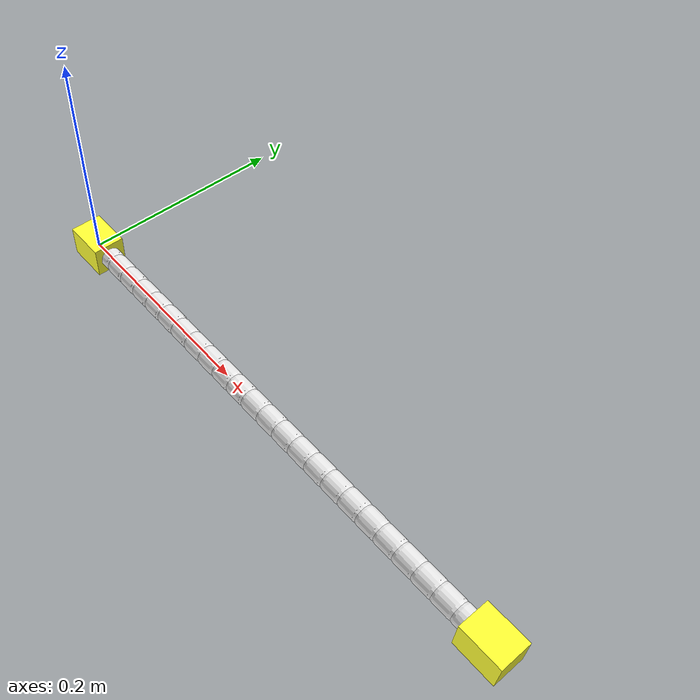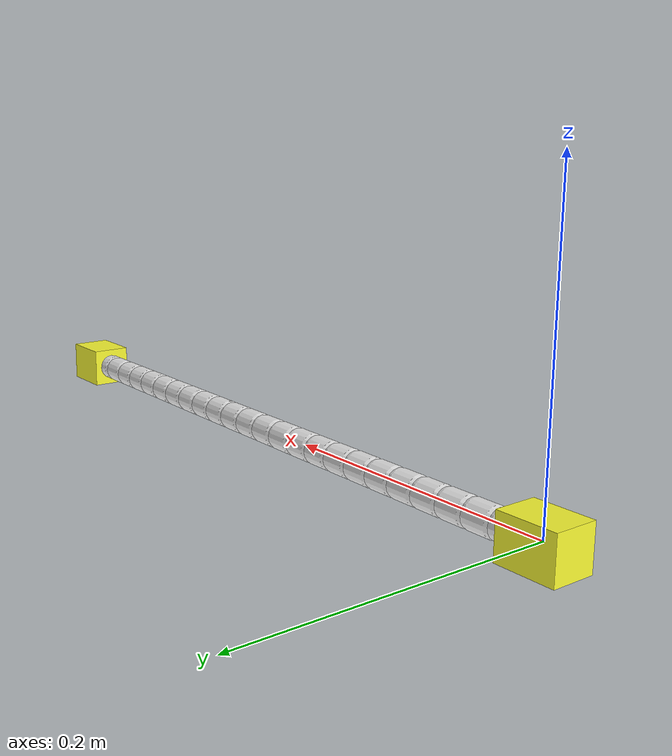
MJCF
<mujoco model="cable_rmb">
  <asset>
    <material name="cable_mat" rgba="0.92 0.92 0.92 1" specular="0.2" shininess="0.3"/>
    <material name="cable_box_mat" rgba="1 1 0.2 1" specular="0.2" shininess="0.3"/>
  </asset>
  <default>
    <geom friction="3 0.2 0.01" condim="4" solref="0.01 0.5" solimp="0.9 0.95 0.001" density="1200"/>
  </default>

  <worldbody>
    <body>
      <body name="object">
        <body name="cable_B0">
          <geom name="cable_endpoint_start" size="0.02 0.015 0.015" type="box" material="cable_box_mat"/>
          <geom name="cable_G0" size="0.01 0.0075" quat="0.707107 0 0.707107 0" type="capsule" material="cable_mat"/>
          <body name="cable_B1" pos="0.02 0 0">
            <joint name="cable_J0_1" pos="-0.01 0 0" axis="0 1 0" group="3" damping="0.005"/>
            <joint name="cable_J1_1" pos="-0.01 0 0" axis="0 0 1" group="3" damping="0.005"/>
            <geom name="cable_G1" size="0.01 0.0075" quat="0.707107 0 0.707107 0" type="capsule" material="cable_mat"/>
            <body name="cable_B2" pos="0.02 0 0">
              <joint name="cable_J0_2" pos="-0.01 0 0" axis="0 1 0" group="3" damping="0.005"/>
              <joint name="cable_J1_2" pos="-0.01 0 0" axis="0 0 1" group="3" damping="0.005"/>
              <geom name="cable_G2" size="0.01 0.0075" quat="0.707107 0 0.707107 0" type="capsule" material="cable_mat"/>
              <body name="cable_B3" pos="0.02 0 0">
                <joint name="cable_J0_3" pos="-0.01 0 0" axis="0 1 0" group="3" damping="0.005"/>
                <joint name="cable_J1_3" pos="-0.01 0 0" axis="0 0 1" group="3" damping="0.005"/>
                <geom name="cable_G3" size="0.01 0.0075" quat="0.707107 0 0.707107 0" type="capsule" material="cable_mat"/>
                <body name="cable_B4" pos="0.02 0 0">
                  <joint name="cable_J0_4" pos="-0.01 0 0" axis="0 1 0" group="3" damping="0.005"/>
                  <joint name="cable_J1_4" pos="-0.01 0 0" axis="0 0 1" group="3" damping="0.005"/>
                  <geom name="cable_G4" size="0.01 0.0075" quat="0.707107 0 0.707107 0" type="capsule" material="cable_mat"/>
                  <body name="cable_B5" pos="0.02 0 0">
                    <joint name="cable_J0_5" pos="-0.01 0 0" axis="0 1 0" group="3" damping="0.005"/>
                    <joint name="cable_J1_5" pos="-0.01 0 0" axis="0 0 1" group="3" damping="0.005"/>
                    <geom name="cable_G5" size="0.01 0.0075" quat="0.707107 0 0.707107 0" type="capsule" material="cable_mat"/>
                    <body name="cable_B6" pos="0.02 0 0">
                      <joint name="cable_J0_6" pos="-0.01 0 0" axis="0 1 0" group="3" damping="0.005"/>
                      <joint name="cable_J1_6" pos="-0.01 0 0" axis="0 0 1" group="3" damping="0.005"/>
                      <geom name="cable_G6" size="0.01 0.0075" quat="0.707107 0 0.707107 0" type="capsule" material="cable_mat"/>
                      <body name="cable_B7" pos="0.02 0 0">
                        <joint name="cable_J0_7" pos="-0.01 0 0" axis="0 1 0" group="3" damping="0.005"/>
                        <joint name="cable_J1_7" pos="-0.01 0 0" axis="0 0 1" group="3" damping="0.005"/>
                        <geom name="cable_G7" size="0.01 0.0075" quat="0.707107 0 0.707107 0" type="capsule" material="cable_mat"/>
                        <body name="cable_B8" pos="0.02 0 0">
                          <joint name="cable_J0_8" pos="-0.01 0 0" axis="0 1 0" group="3" damping="0.005"/>
                          <joint name="cable_J1_8" pos="-0.01 0 0" axis="0 0 1" group="3" damping="0.005"/>
                          <geom name="cable_G8" size="0.01 0.0075" quat="0.707107 0 0.707107 0" type="capsule" material="cable_mat"/>
                          <body name="cable_B9" pos="0.02 0 0">
                            <joint name="cable_J0_9" pos="-0.01 0 0" axis="0 1 0" group="3" damping="0.005"/>
                            <joint name="cable_J1_9" pos="-0.01 0 0" axis="0 0 1" group="3" damping="0.005"/>
                            <geom name="cable_G9" size="0.01 0.0075" quat="0.707107 0 0.707107 0" type="capsule" material="cable_mat"/>
                            <body name="cable_B10" pos="0.02 0 0">
                              <joint name="cable_J0_10" pos="-0.01 0 0" axis="0 1 0" group="3" damping="0.005"/>
                              <joint name="cable_J1_10" pos="-0.01 0 0" axis="0 0 1" group="3" damping="0.005"/>
                              <geom name="cable_G10" size="0.01 0.0075" quat="0.707107 0 0.707107 0" type="capsule" material="cable_mat"/>
                              <body name="cable_B11" pos="0.02 0 0">
                                <joint name="cable_J0_11" pos="-0.01 0 0" axis="0 1 0" group="3" damping="0.005"/>
                                <joint name="cable_J1_11" pos="-0.01 0 0" axis="0 0 1" group="3" damping="0.005"/>
                                <geom name="cable_G11" size="0.01 0.0075" quat="0.707107 0 0.707107 0" type="capsule" material="cable_mat"/>
                                <body name="cable_B12" pos="0.02 0 0">
                                  <joint name="cable_J0_12" pos="-0.01 0 0" axis="0 1 0" group="3" damping="0.005"/>
                                  <joint name="cable_J1_12" pos="-0.01 0 0" axis="0 0 1" group="3" damping="0.005"/>
                                  <geom name="cable_G12" size="0.01 0.0075" quat="0.707107 0 0.707107 0" type="capsule" material="cable_mat"/>
                                  <body name="cable_B13" pos="0.02 0 0">
                                    <joint name="cable_J0_13" pos="-0.01 0 0" axis="0 1 0" group="3" damping="0.005"/>
                                    <joint name="cable_J1_13" pos="-0.01 0 0" axis="0 0 1" group="3" damping="0.005"/>
                                    <geom name="cable_G13" size="0.01 0.0075" quat="0.707107 0 0.707107 0" type="capsule" material="cable_mat"/>
                                    <body name="cable_B14" pos="0.02 0 0">
                                      <joint name="cable_J0_14" pos="-0.01 0 0" axis="0 1 0" group="3" damping="0.005"/>
                                      <joint name="cable_J1_14" pos="-0.01 0 0" axis="0 0 1" group="3" damping="0.005"/>
                                      <geom name="cable_G14" size="0.01 0.0075" quat="0.707107 0 0.707107 0" type="capsule" material="cable_mat"/>
                                      <body name="cable_B15" pos="0.02 0 0">
                                        <joint name="cable_J0_15" pos="-0.01 0 0" axis="0 1 0" group="3" damping="0.005"/>
                                        <joint name="cable_J1_15" pos="-0.01 0 0" axis="0 0 1" group="3" damping="0.005"/>
                                        <geom name="cable_G15" size="0.01 0.0075" quat="0.707107 0 0.707107 0" type="capsule" material="cable_mat"/>
                                        <body name="cable_B16" pos="0.02 0 0">
                                          <joint name="cable_J0_16" pos="-0.01 0 0" axis="0 1 0" group="3" damping="0.005"/>
                                          <joint name="cable_J1_16" pos="-0.01 0 0" axis="0 0 1" group="3" damping="0.005"/>
                                          <geom name="cable_G16" size="0.01 0.0075" quat="0.707107 0 0.707107 0" type="capsule" material="cable_mat"/>
                                          <body name="cable_B17" pos="0.02 0 0">
                                            <joint name="cable_J0_17" pos="-0.01 0 0" axis="0 1 0" group="3" damping="0.005"/>
                                            <joint name="cable_J1_17" pos="-0.01 0 0" axis="0 0 1" group="3" damping="0.005"/>
                                            <geom name="cable_G17" size="0.01 0.0075" quat="0.707107 0 0.707107 0" type="capsule" material="cable_mat"/>
                                            <body name="cable_B18" pos="0.02 0 0">
                                              <joint name="cable_J0_18" pos="-0.01 0 0" axis="0 1 0" group="3" damping="0.005"/>
                                              <joint name="cable_J1_18" pos="-0.01 0 0" axis="0 0 1" group="3" damping="0.005"/>
                                              <geom name="cable_G18" size="0.01 0.0075" quat="0.707107 0 0.707107 0" type="capsule" material="cable_mat"/>
                                              <body name="cable_B19" pos="0.02 0 0">
                                                <joint name="cable_J0_19" pos="-0.01 0 0" axis="0 1 0" group="3" damping="0.005"/>
                                                <joint name="cable_J1_19" pos="-0.01 0 0" axis="0 0 1" group="3" damping="0.005"/>
                                                <geom name="cable_G19" size="0.01 0.0075" quat="0.707107 0 0.707107 0" type="capsule" material="cable_mat"/>
                                                <body name="cable_B20" pos="0.02 0 0">
                                                  <joint name="cable_J0_20" pos="-0.01 0 0" axis="0 1 0" group="3" damping="0.005"/>
                                                  <joint name="cable_J1_20" pos="-0.01 0 0" axis="0 0 1" group="3" damping="0.005"/>
                                                  <geom name="cable_G20" size="0.01 0.0075" quat="0.707107 0 0.707107 0" type="capsule" material="cable_mat"/>
                                                  <body name="cable_B21" pos="0.02 0 0">
                                                    <joint name="cable_J0_21" pos="-0.01 0 0" axis="0 1 0" group="3" damping="0.005"/>
                                                    <joint name="cable_J1_21" pos="-0.01 0 0" axis="0 0 1" group="3" damping="0.005"/>
                                                    <geom name="cable_G21" size="0.01 0.0075" quat="0.707107 0 0.707107 0" type="capsule" material="cable_mat"/>
                                                    <body name="cable_B22" pos="0.02 0 0">
                                                      <joint name="cable_J0_22" pos="-0.01 0 0" axis="0 1 0" group="3" damping="0.005"/>
                                                      <joint name="cable_J1_22" pos="-0.01 0 0" axis="0 0 1" group="3" damping="0.005"/>
                                                      <geom name="cable_G22" size="0.01 0.0075" quat="0.707107 0 0.707107 0" type="capsule" material="cable_mat"/>
                                                      <body name="cable_B23" pos="0.02 0 0">
                                                        <joint name="cable_J0_23" pos="-0.01 0 0" axis="0 1 0" group="3" damping="0.005"/>
                                                        <joint name="cable_J1_23" pos="-0.01 0 0" axis="0 0 1" group="3" damping="0.005"/>
                                                        <geom name="cable_G23" size="0.01 0.0075" quat="0.707107 0 0.707107 0" type="capsule" material="cable_mat"/>
                                                        <body name="cable_B24" pos="0.02 0 0">
                                                          <joint name="cable_J0_24" pos="-0.01 0 0" axis="0 1 0" group="3" damping="0.005"/>
                                                          <joint name="cable_J1_24" pos="-0.01 0 0" axis="0 0 1" group="3" damping="0.005"/>
                                                          <geom name="cable_G24" size="0.01 0.0075" quat="0.707107 0 0.707107 0" type="capsule" material="cable_mat"/>
                                                          <body name="cable_end" pos="0.02 0 0">
                                                            <geom name="cable_endpoint_end" type="box" size="0.02 0.015 0.015" pos="0.0 0.0 0.0" material="cable_box_mat"/>
                                                          </body>
                                                        </body>
                                                      </body>
                                                    </body>
                                                  </body>
                                                </body>
                                              </body>
                                            </body>
                                          </body>
                                        </body>
                                      </body>
                                    </body>
                                  </body>
                                </body>
                              </body>
                            </body>
                          </body>
                        </body>
                      </body>
                    </body>
                  </body>
                </body>
              </body>
            </body>
          </body>
        </body>
      </body>
      <site name="bottom_site" pos="0 0 -0.015" size="0.005" rgba="0 0 0 0"/>
      <site name="top_site" pos="0 0 0.015" size="0.005" rgba="0 0 0 0"/>
      <site name="horizontal_radius_site" pos="0.25 0 0" size="0.005" rgba="0 0 0 0"/>
    </body>
  </worldbody>

  <contact>
    <exclude body1="cable_B0" body2="cable_B1"/>
  </contact>
</mujoco>
